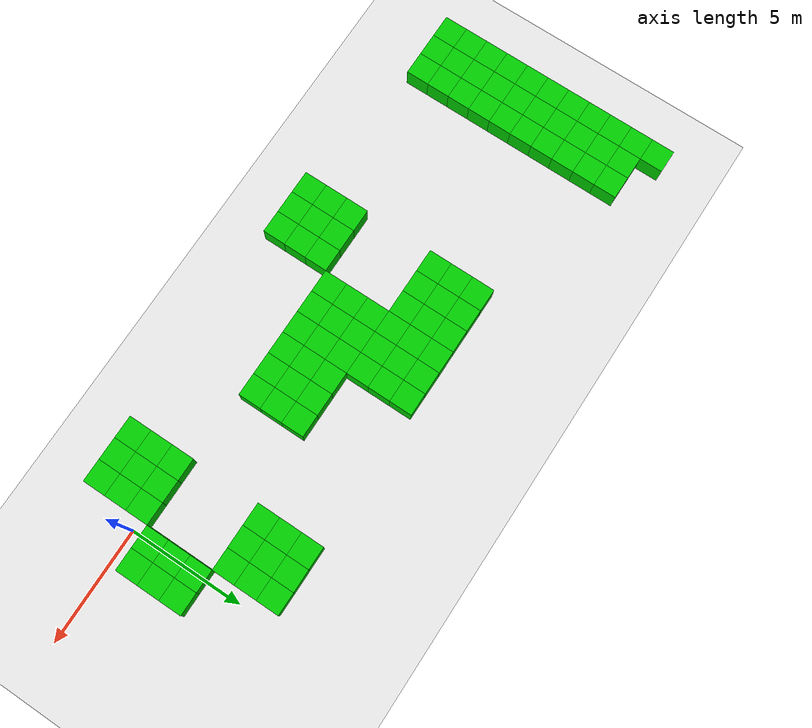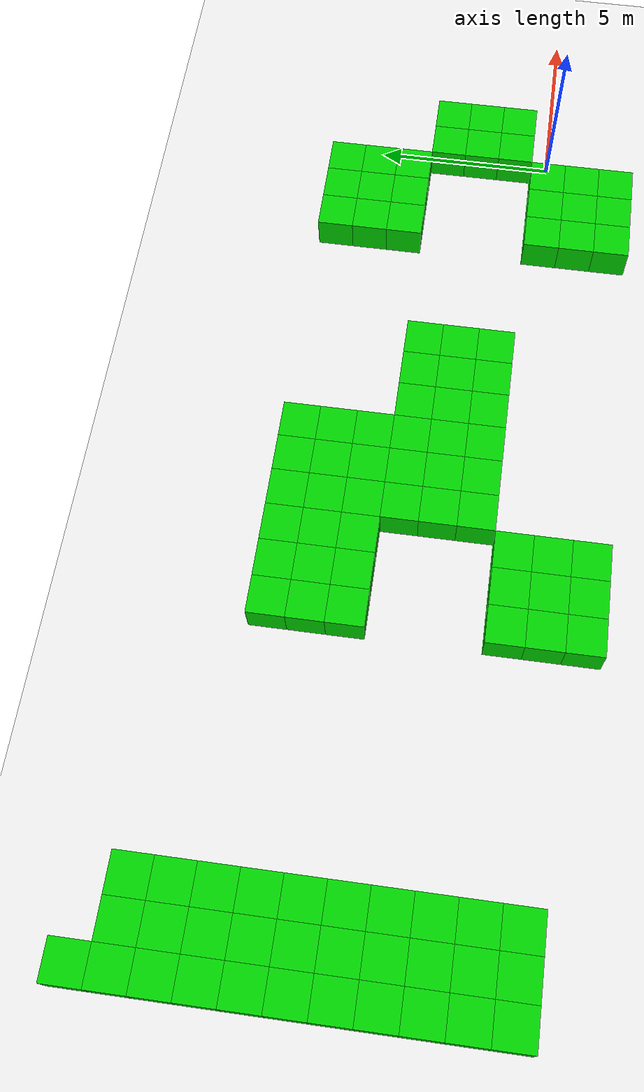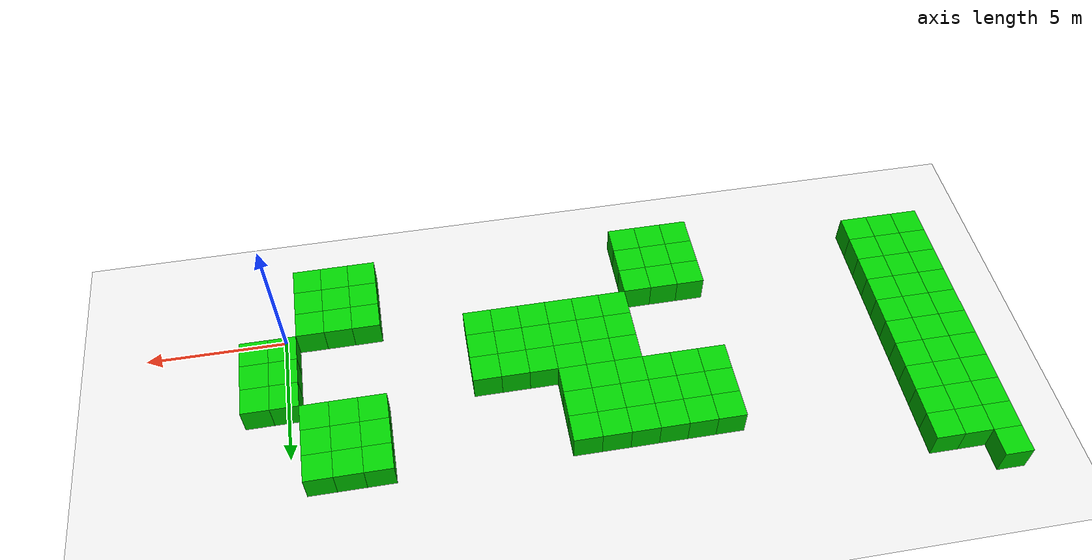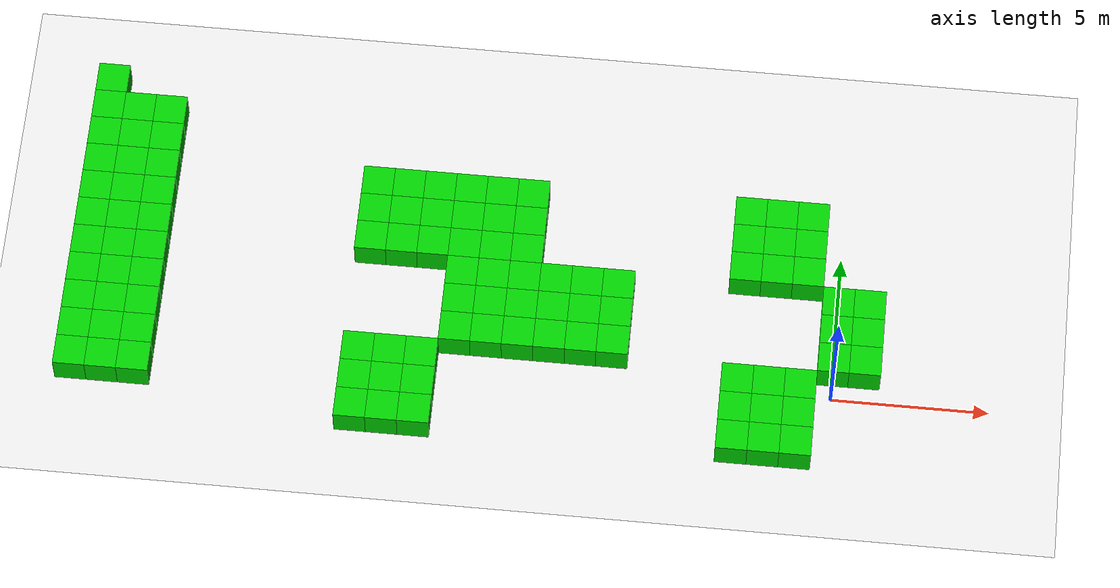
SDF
<sdf version="1.6">
 <world name="generated_maze">
  <model name="ground_plane">
   <static>true</static>
   <link name="link">
    <collision name="collision">
     <geometry><plane><normal>0 0 1</normal><size>100 100</size></plane></geometry>
    </collision>
    <visual name="visual">
     <geometry><plane><normal>0 0 1</normal><size>100 100</size></plane></geometry>
     <material>
      <ambient>0.9 0.9 0.9 1</ambient>
      <diffuse>0.9 0.9 0.9 1</diffuse>
      <specular>0.3 0.3 0.3 1</specular>
     </material>
    </visual>
   </link>
  </model>
  <model name="wall_15_0">
   <static>true</static>
   <pose>-24 9 0.5 0 0 0</pose>
   <link name="link">
    <collision name="collision"><geometry><box><size>1 1 1</size></box></geometry></collision>
    <visual name="visual">
     <geometry><box><size>1 1 1</size></box></geometry>
     <material>
      <ambient>0.0 0.8 0.0 1</ambient>
      <diffuse>0.0 0.8 0.0 1</diffuse>
      <specular>0.1 0.1 0.1 1</specular>
     </material>
    </visual>
   </link>
  </model>
  <model name="wall_16_0">
   <static>true</static>
   <pose>-24 8 0.5 0 0 0</pose>
   <link name="link">
    <collision name="collision"><geometry><box><size>1 1 1</size></box></geometry></collision>
    <visual name="visual">
     <geometry><box><size>1 1 1</size></box></geometry>
     <material>
      <ambient>0.0 0.8 0.0 1</ambient>
      <diffuse>0.0 0.8 0.0 1</diffuse>
      <specular>0.1 0.1 0.1 1</specular>
     </material>
    </visual>
   </link>
  </model>
  <model name="wall_16_1">
   <static>true</static>
   <pose>-23 8 0.5 0 0 0</pose>
   <link name="link">
    <collision name="collision"><geometry><box><size>1 1 1</size></box></geometry></collision>
    <visual name="visual">
     <geometry><box><size>1 1 1</size></box></geometry>
     <material>
      <ambient>0.0 0.8 0.0 1</ambient>
      <diffuse>0.0 0.8 0.0 1</diffuse>
      <specular>0.1 0.1 0.1 1</specular>
     </material>
    </visual>
   </link>
  </model>
  <model name="wall_16_2">
   <static>true</static>
   <pose>-22 8 0.5 0 0 0</pose>
   <link name="link">
    <collision name="collision"><geometry><box><size>1 1 1</size></box></geometry></collision>
    <visual name="visual">
     <geometry><box><size>1 1 1</size></box></geometry>
     <material>
      <ambient>0.0 0.8 0.0 1</ambient>
      <diffuse>0.0 0.8 0.0 1</diffuse>
      <specular>0.1 0.1 0.1 1</specular>
     </material>
    </visual>
   </link>
  </model>
  <model name="wall_17_0">
   <static>true</static>
   <pose>-24 7 0.5 0 0 0</pose>
   <link name="link">
    <collision name="collision"><geometry><box><size>1 1 1</size></box></geometry></collision>
    <visual name="visual">
     <geometry><box><size>1 1 1</size></box></geometry>
     <material>
      <ambient>0.0 0.8 0.0 1</ambient>
      <diffuse>0.0 0.8 0.0 1</diffuse>
      <specular>0.1 0.1 0.1 1</specular>
     </material>
    </visual>
   </link>
  </model>
  <model name="wall_17_1">
   <static>true</static>
   <pose>-23 7 0.5 0 0 0</pose>
   <link name="link">
    <collision name="collision"><geometry><box><size>1 1 1</size></box></geometry></collision>
    <visual name="visual">
     <geometry><box><size>1 1 1</size></box></geometry>
     <material>
      <ambient>0.0 0.8 0.0 1</ambient>
      <diffuse>0.0 0.8 0.0 1</diffuse>
      <specular>0.1 0.1 0.1 1</specular>
     </material>
    </visual>
   </link>
  </model>
  <model name="wall_17_2">
   <static>true</static>
   <pose>-22 7 0.5 0 0 0</pose>
   <link name="link">
    <collision name="collision"><geometry><box><size>1 1 1</size></box></geometry></collision>
    <visual name="visual">
     <geometry><box><size>1 1 1</size></box></geometry>
     <material>
      <ambient>0.0 0.8 0.0 1</ambient>
      <diffuse>0.0 0.8 0.0 1</diffuse>
      <specular>0.1 0.1 0.1 1</specular>
     </material>
    </visual>
   </link>
  </model>
  <model name="wall_18_0">
   <static>true</static>
   <pose>-24 6 0.5 0 0 0</pose>
   <link name="link">
    <collision name="collision"><geometry><box><size>1 1 1</size></box></geometry></collision>
    <visual name="visual">
     <geometry><box><size>1 1 1</size></box></geometry>
     <material>
      <ambient>0.0 0.8 0.0 1</ambient>
      <diffuse>0.0 0.8 0.0 1</diffuse>
      <specular>0.1 0.1 0.1 1</specular>
     </material>
    </visual>
   </link>
  </model>
  <model name="wall_18_1">
   <static>true</static>
   <pose>-23 6 0.5 0 0 0</pose>
   <link name="link">
    <collision name="collision"><geometry><box><size>1 1 1</size></box></geometry></collision>
    <visual name="visual">
     <geometry><box><size>1 1 1</size></box></geometry>
     <material>
      <ambient>0.0 0.8 0.0 1</ambient>
      <diffuse>0.0 0.8 0.0 1</diffuse>
      <specular>0.1 0.1 0.1 1</specular>
     </material>
    </visual>
   </link>
  </model>
  <model name="wall_18_2">
   <static>true</static>
   <pose>-22 6 0.5 0 0 0</pose>
   <link name="link">
    <collision name="collision"><geometry><box><size>1 1 1</size></box></geometry></collision>
    <visual name="visual">
     <geometry><box><size>1 1 1</size></box></geometry>
     <material>
      <ambient>0.0 0.8 0.0 1</ambient>
      <diffuse>0.0 0.8 0.0 1</diffuse>
      <specular>0.1 0.1 0.1 1</specular>
     </material>
    </visual>
   </link>
  </model>
  <model name="wall_18_9">
   <static>true</static>
   <pose>-15 6 0.5 0 0 0</pose>
   <link name="link">
    <collision name="collision"><geometry><box><size>1 1 1</size></box></geometry></collision>
    <visual name="visual">
     <geometry><box><size>1 1 1</size></box></geometry>
     <material>
      <ambient>0.0 0.8 0.0 1</ambient>
      <diffuse>0.0 0.8 0.0 1</diffuse>
      <specular>0.1 0.1 0.1 1</specular>
     </material>
    </visual>
   </link>
  </model>
  <model name="wall_18_10">
   <static>true</static>
   <pose>-14 6 0.5 0 0 0</pose>
   <link name="link">
    <collision name="collision"><geometry><box><size>1 1 1</size></box></geometry></collision>
    <visual name="visual">
     <geometry><box><size>1 1 1</size></box></geometry>
     <material>
      <ambient>0.0 0.8 0.0 1</ambient>
      <diffuse>0.0 0.8 0.0 1</diffuse>
      <specular>0.1 0.1 0.1 1</specular>
     </material>
    </visual>
   </link>
  </model>
  <model name="wall_18_11">
   <static>true</static>
   <pose>-13 6 0.5 0 0 0</pose>
   <link name="link">
    <collision name="collision"><geometry><box><size>1 1 1</size></box></geometry></collision>
    <visual name="visual">
     <geometry><box><size>1 1 1</size></box></geometry>
     <material>
      <ambient>0.0 0.8 0.0 1</ambient>
      <diffuse>0.0 0.8 0.0 1</diffuse>
      <specular>0.1 0.1 0.1 1</specular>
     </material>
    </visual>
   </link>
  </model>
  <model name="wall_18_12">
   <static>true</static>
   <pose>-12 6 0.5 0 0 0</pose>
   <link name="link">
    <collision name="collision"><geometry><box><size>1 1 1</size></box></geometry></collision>
    <visual name="visual">
     <geometry><box><size>1 1 1</size></box></geometry>
     <material>
      <ambient>0.0 0.8 0.0 1</ambient>
      <diffuse>0.0 0.8 0.0 1</diffuse>
      <specular>0.1 0.1 0.1 1</specular>
     </material>
    </visual>
   </link>
  </model>
  <model name="wall_18_13">
   <static>true</static>
   <pose>-11 6 0.5 0 0 0</pose>
   <link name="link">
    <collision name="collision"><geometry><box><size>1 1 1</size></box></geometry></collision>
    <visual name="visual">
     <geometry><box><size>1 1 1</size></box></geometry>
     <material>
      <ambient>0.0 0.8 0.0 1</ambient>
      <diffuse>0.0 0.8 0.0 1</diffuse>
      <specular>0.1 0.1 0.1 1</specular>
     </material>
    </visual>
   </link>
  </model>
  <model name="wall_18_14">
   <static>true</static>
   <pose>-10 6 0.5 0 0 0</pose>
   <link name="link">
    <collision name="collision"><geometry><box><size>1 1 1</size></box></geometry></collision>
    <visual name="visual">
     <geometry><box><size>1 1 1</size></box></geometry>
     <material>
      <ambient>0.0 0.8 0.0 1</ambient>
      <diffuse>0.0 0.8 0.0 1</diffuse>
      <specular>0.1 0.1 0.1 1</specular>
     </material>
    </visual>
   </link>
  </model>
  <model name="wall_18_21">
   <static>true</static>
   <pose>-3 6 0.5 0 0 0</pose>
   <link name="link">
    <collision name="collision"><geometry><box><size>1 1 1</size></box></geometry></collision>
    <visual name="visual">
     <geometry><box><size>1 1 1</size></box></geometry>
     <material>
      <ambient>0.0 0.8 0.0 1</ambient>
      <diffuse>0.0 0.8 0.0 1</diffuse>
      <specular>0.1 0.1 0.1 1</specular>
     </material>
    </visual>
   </link>
  </model>
  <model name="wall_18_22">
   <static>true</static>
   <pose>-2 6 0.5 0 0 0</pose>
   <link name="link">
    <collision name="collision"><geometry><box><size>1 1 1</size></box></geometry></collision>
    <visual name="visual">
     <geometry><box><size>1 1 1</size></box></geometry>
     <material>
      <ambient>0.0 0.8 0.0 1</ambient>
      <diffuse>0.0 0.8 0.0 1</diffuse>
      <specular>0.1 0.1 0.1 1</specular>
     </material>
    </visual>
   </link>
  </model>
  <model name="wall_18_23">
   <static>true</static>
   <pose>-1 6 0.5 0 0 0</pose>
   <link name="link">
    <collision name="collision"><geometry><box><size>1 1 1</size></box></geometry></collision>
    <visual name="visual">
     <geometry><box><size>1 1 1</size></box></geometry>
     <material>
      <ambient>0.0 0.8 0.0 1</ambient>
      <diffuse>0.0 0.8 0.0 1</diffuse>
      <specular>0.1 0.1 0.1 1</specular>
     </material>
    </visual>
   </link>
  </model>
  <model name="wall_19_0">
   <static>true</static>
   <pose>-24 5 0.5 0 0 0</pose>
   <link name="link">
    <collision name="collision"><geometry><box><size>1 1 1</size></box></geometry></collision>
    <visual name="visual">
     <geometry><box><size>1 1 1</size></box></geometry>
     <material>
      <ambient>0.0 0.8 0.0 1</ambient>
      <diffuse>0.0 0.8 0.0 1</diffuse>
      <specular>0.1 0.1 0.1 1</specular>
     </material>
    </visual>
   </link>
  </model>
  <model name="wall_19_1">
   <static>true</static>
   <pose>-23 5 0.5 0 0 0</pose>
   <link name="link">
    <collision name="collision"><geometry><box><size>1 1 1</size></box></geometry></collision>
    <visual name="visual">
     <geometry><box><size>1 1 1</size></box></geometry>
     <material>
      <ambient>0.0 0.8 0.0 1</ambient>
      <diffuse>0.0 0.8 0.0 1</diffuse>
      <specular>0.1 0.1 0.1 1</specular>
     </material>
    </visual>
   </link>
  </model>
  <model name="wall_19_2">
   <static>true</static>
   <pose>-22 5 0.5 0 0 0</pose>
   <link name="link">
    <collision name="collision"><geometry><box><size>1 1 1</size></box></geometry></collision>
    <visual name="visual">
     <geometry><box><size>1 1 1</size></box></geometry>
     <material>
      <ambient>0.0 0.8 0.0 1</ambient>
      <diffuse>0.0 0.8 0.0 1</diffuse>
      <specular>0.1 0.1 0.1 1</specular>
     </material>
    </visual>
   </link>
  </model>
  <model name="wall_19_9">
   <static>true</static>
   <pose>-15 5 0.5 0 0 0</pose>
   <link name="link">
    <collision name="collision"><geometry><box><size>1 1 1</size></box></geometry></collision>
    <visual name="visual">
     <geometry><box><size>1 1 1</size></box></geometry>
     <material>
      <ambient>0.0 0.8 0.0 1</ambient>
      <diffuse>0.0 0.8 0.0 1</diffuse>
      <specular>0.1 0.1 0.1 1</specular>
     </material>
    </visual>
   </link>
  </model>
  <model name="wall_19_10">
   <static>true</static>
   <pose>-14 5 0.5 0 0 0</pose>
   <link name="link">
    <collision name="collision"><geometry><box><size>1 1 1</size></box></geometry></collision>
    <visual name="visual">
     <geometry><box><size>1 1 1</size></box></geometry>
     <material>
      <ambient>0.0 0.8 0.0 1</ambient>
      <diffuse>0.0 0.8 0.0 1</diffuse>
      <specular>0.1 0.1 0.1 1</specular>
     </material>
    </visual>
   </link>
  </model>
  <model name="wall_19_11">
   <static>true</static>
   <pose>-13 5 0.5 0 0 0</pose>
   <link name="link">
    <collision name="collision"><geometry><box><size>1 1 1</size></box></geometry></collision>
    <visual name="visual">
     <geometry><box><size>1 1 1</size></box></geometry>
     <material>
      <ambient>0.0 0.8 0.0 1</ambient>
      <diffuse>0.0 0.8 0.0 1</diffuse>
      <specular>0.1 0.1 0.1 1</specular>
     </material>
    </visual>
   </link>
  </model>
  <model name="wall_19_12">
   <static>true</static>
   <pose>-12 5 0.5 0 0 0</pose>
   <link name="link">
    <collision name="collision"><geometry><box><size>1 1 1</size></box></geometry></collision>
    <visual name="visual">
     <geometry><box><size>1 1 1</size></box></geometry>
     <material>
      <ambient>0.0 0.8 0.0 1</ambient>
      <diffuse>0.0 0.8 0.0 1</diffuse>
      <specular>0.1 0.1 0.1 1</specular>
     </material>
    </visual>
   </link>
  </model>
  <model name="wall_19_13">
   <static>true</static>
   <pose>-11 5 0.5 0 0 0</pose>
   <link name="link">
    <collision name="collision"><geometry><box><size>1 1 1</size></box></geometry></collision>
    <visual name="visual">
     <geometry><box><size>1 1 1</size></box></geometry>
     <material>
      <ambient>0.0 0.8 0.0 1</ambient>
      <diffuse>0.0 0.8 0.0 1</diffuse>
      <specular>0.1 0.1 0.1 1</specular>
     </material>
    </visual>
   </link>
  </model>
  <model name="wall_19_14">
   <static>true</static>
   <pose>-10 5 0.5 0 0 0</pose>
   <link name="link">
    <collision name="collision"><geometry><box><size>1 1 1</size></box></geometry></collision>
    <visual name="visual">
     <geometry><box><size>1 1 1</size></box></geometry>
     <material>
      <ambient>0.0 0.8 0.0 1</ambient>
      <diffuse>0.0 0.8 0.0 1</diffuse>
      <specular>0.1 0.1 0.1 1</specular>
     </material>
    </visual>
   </link>
  </model>
  <model name="wall_19_21">
   <static>true</static>
   <pose>-3 5 0.5 0 0 0</pose>
   <link name="link">
    <collision name="collision"><geometry><box><size>1 1 1</size></box></geometry></collision>
    <visual name="visual">
     <geometry><box><size>1 1 1</size></box></geometry>
     <material>
      <ambient>0.0 0.8 0.0 1</ambient>
      <diffuse>0.0 0.8 0.0 1</diffuse>
      <specular>0.1 0.1 0.1 1</specular>
     </material>
    </visual>
   </link>
  </model>
  <model name="wall_19_22">
   <static>true</static>
   <pose>-2 5 0.5 0 0 0</pose>
   <link name="link">
    <collision name="collision"><geometry><box><size>1 1 1</size></box></geometry></collision>
    <visual name="visual">
     <geometry><box><size>1 1 1</size></box></geometry>
     <material>
      <ambient>0.0 0.8 0.0 1</ambient>
      <diffuse>0.0 0.8 0.0 1</diffuse>
      <specular>0.1 0.1 0.1 1</specular>
     </material>
    </visual>
   </link>
  </model>
  <model name="wall_19_23">
   <static>true</static>
   <pose>-1 5 0.5 0 0 0</pose>
   <link name="link">
    <collision name="collision"><geometry><box><size>1 1 1</size></box></geometry></collision>
    <visual name="visual">
     <geometry><box><size>1 1 1</size></box></geometry>
     <material>
      <ambient>0.0 0.8 0.0 1</ambient>
      <diffuse>0.0 0.8 0.0 1</diffuse>
      <specular>0.1 0.1 0.1 1</specular>
     </material>
    </visual>
   </link>
  </model>
  <model name="wall_20_0">
   <static>true</static>
   <pose>-24 4 0.5 0 0 0</pose>
   <link name="link">
    <collision name="collision"><geometry><box><size>1 1 1</size></box></geometry></collision>
    <visual name="visual">
     <geometry><box><size>1 1 1</size></box></geometry>
     <material>
      <ambient>0.0 0.8 0.0 1</ambient>
      <diffuse>0.0 0.8 0.0 1</diffuse>
      <specular>0.1 0.1 0.1 1</specular>
     </material>
    </visual>
   </link>
  </model>
  <model name="wall_20_1">
   <static>true</static>
   <pose>-23 4 0.5 0 0 0</pose>
   <link name="link">
    <collision name="collision"><geometry><box><size>1 1 1</size></box></geometry></collision>
    <visual name="visual">
     <geometry><box><size>1 1 1</size></box></geometry>
     <material>
      <ambient>0.0 0.8 0.0 1</ambient>
      <diffuse>0.0 0.8 0.0 1</diffuse>
      <specular>0.1 0.1 0.1 1</specular>
     </material>
    </visual>
   </link>
  </model>
  <model name="wall_20_2">
   <static>true</static>
   <pose>-22 4 0.5 0 0 0</pose>
   <link name="link">
    <collision name="collision"><geometry><box><size>1 1 1</size></box></geometry></collision>
    <visual name="visual">
     <geometry><box><size>1 1 1</size></box></geometry>
     <material>
      <ambient>0.0 0.8 0.0 1</ambient>
      <diffuse>0.0 0.8 0.0 1</diffuse>
      <specular>0.1 0.1 0.1 1</specular>
     </material>
    </visual>
   </link>
  </model>
  <model name="wall_20_9">
   <static>true</static>
   <pose>-15 4 0.5 0 0 0</pose>
   <link name="link">
    <collision name="collision"><geometry><box><size>1 1 1</size></box></geometry></collision>
    <visual name="visual">
     <geometry><box><size>1 1 1</size></box></geometry>
     <material>
      <ambient>0.0 0.8 0.0 1</ambient>
      <diffuse>0.0 0.8 0.0 1</diffuse>
      <specular>0.1 0.1 0.1 1</specular>
     </material>
    </visual>
   </link>
  </model>
  <model name="wall_20_10">
   <static>true</static>
   <pose>-14 4 0.5 0 0 0</pose>
   <link name="link">
    <collision name="collision"><geometry><box><size>1 1 1</size></box></geometry></collision>
    <visual name="visual">
     <geometry><box><size>1 1 1</size></box></geometry>
     <material>
      <ambient>0.0 0.8 0.0 1</ambient>
      <diffuse>0.0 0.8 0.0 1</diffuse>
      <specular>0.1 0.1 0.1 1</specular>
     </material>
    </visual>
   </link>
  </model>
  <model name="wall_20_11">
   <static>true</static>
   <pose>-13 4 0.5 0 0 0</pose>
   <link name="link">
    <collision name="collision"><geometry><box><size>1 1 1</size></box></geometry></collision>
    <visual name="visual">
     <geometry><box><size>1 1 1</size></box></geometry>
     <material>
      <ambient>0.0 0.8 0.0 1</ambient>
      <diffuse>0.0 0.8 0.0 1</diffuse>
      <specular>0.1 0.1 0.1 1</specular>
     </material>
    </visual>
   </link>
  </model>
  <model name="wall_20_12">
   <static>true</static>
   <pose>-12 4 0.5 0 0 0</pose>
   <link name="link">
    <collision name="collision"><geometry><box><size>1 1 1</size></box></geometry></collision>
    <visual name="visual">
     <geometry><box><size>1 1 1</size></box></geometry>
     <material>
      <ambient>0.0 0.8 0.0 1</ambient>
      <diffuse>0.0 0.8 0.0 1</diffuse>
      <specular>0.1 0.1 0.1 1</specular>
     </material>
    </visual>
   </link>
  </model>
  <model name="wall_20_13">
   <static>true</static>
   <pose>-11 4 0.5 0 0 0</pose>
   <link name="link">
    <collision name="collision"><geometry><box><size>1 1 1</size></box></geometry></collision>
    <visual name="visual">
     <geometry><box><size>1 1 1</size></box></geometry>
     <material>
      <ambient>0.0 0.8 0.0 1</ambient>
      <diffuse>0.0 0.8 0.0 1</diffuse>
      <specular>0.1 0.1 0.1 1</specular>
     </material>
    </visual>
   </link>
  </model>
  <model name="wall_20_14">
   <static>true</static>
   <pose>-10 4 0.5 0 0 0</pose>
   <link name="link">
    <collision name="collision"><geometry><box><size>1 1 1</size></box></geometry></collision>
    <visual name="visual">
     <geometry><box><size>1 1 1</size></box></geometry>
     <material>
      <ambient>0.0 0.8 0.0 1</ambient>
      <diffuse>0.0 0.8 0.0 1</diffuse>
      <specular>0.1 0.1 0.1 1</specular>
     </material>
    </visual>
   </link>
  </model>
  <model name="wall_20_21">
   <static>true</static>
   <pose>-3 4 0.5 0 0 0</pose>
   <link name="link">
    <collision name="collision"><geometry><box><size>1 1 1</size></box></geometry></collision>
    <visual name="visual">
     <geometry><box><size>1 1 1</size></box></geometry>
     <material>
      <ambient>0.0 0.8 0.0 1</ambient>
      <diffuse>0.0 0.8 0.0 1</diffuse>
      <specular>0.1 0.1 0.1 1</specular>
     </material>
    </visual>
   </link>
  </model>
  <model name="wall_20_22">
   <static>true</static>
   <pose>-2 4 0.5 0 0 0</pose>
   <link name="link">
    <collision name="collision"><geometry><box><size>1 1 1</size></box></geometry></collision>
    <visual name="visual">
     <geometry><box><size>1 1 1</size></box></geometry>
     <material>
      <ambient>0.0 0.8 0.0 1</ambient>
      <diffuse>0.0 0.8 0.0 1</diffuse>
      <specular>0.1 0.1 0.1 1</specular>
     </material>
    </visual>
   </link>
  </model>
  <model name="wall_20_23">
   <static>true</static>
   <pose>-1 4 0.5 0 0 0</pose>
   <link name="link">
    <collision name="collision"><geometry><box><size>1 1 1</size></box></geometry></collision>
    <visual name="visual">
     <geometry><box><size>1 1 1</size></box></geometry>
     <material>
      <ambient>0.0 0.8 0.0 1</ambient>
      <diffuse>0.0 0.8 0.0 1</diffuse>
      <specular>0.1 0.1 0.1 1</specular>
     </material>
    </visual>
   </link>
  </model>
  <model name="wall_21_0">
   <static>true</static>
   <pose>-24 3 0.5 0 0 0</pose>
   <link name="link">
    <collision name="collision"><geometry><box><size>1 1 1</size></box></geometry></collision>
    <visual name="visual">
     <geometry><box><size>1 1 1</size></box></geometry>
     <material>
      <ambient>0.0 0.8 0.0 1</ambient>
      <diffuse>0.0 0.8 0.0 1</diffuse>
      <specular>0.1 0.1 0.1 1</specular>
     </material>
    </visual>
   </link>
  </model>
  <model name="wall_21_1">
   <static>true</static>
   <pose>-23 3 0.5 0 0 0</pose>
   <link name="link">
    <collision name="collision"><geometry><box><size>1 1 1</size></box></geometry></collision>
    <visual name="visual">
     <geometry><box><size>1 1 1</size></box></geometry>
     <material>
      <ambient>0.0 0.8 0.0 1</ambient>
      <diffuse>0.0 0.8 0.0 1</diffuse>
      <specular>0.1 0.1 0.1 1</specular>
     </material>
    </visual>
   </link>
  </model>
  <model name="wall_21_2">
   <static>true</static>
   <pose>-22 3 0.5 0 0 0</pose>
   <link name="link">
    <collision name="collision"><geometry><box><size>1 1 1</size></box></geometry></collision>
    <visual name="visual">
     <geometry><box><size>1 1 1</size></box></geometry>
     <material>
      <ambient>0.0 0.8 0.0 1</ambient>
      <diffuse>0.0 0.8 0.0 1</diffuse>
      <specular>0.1 0.1 0.1 1</specular>
     </material>
    </visual>
   </link>
  </model>
  <model name="wall_21_12">
   <static>true</static>
   <pose>-12 3 0.5 0 0 0</pose>
   <link name="link">
    <collision name="collision"><geometry><box><size>1 1 1</size></box></geometry></collision>
    <visual name="visual">
     <geometry><box><size>1 1 1</size></box></geometry>
     <material>
      <ambient>0.0 0.8 0.0 1</ambient>
      <diffuse>0.0 0.8 0.0 1</diffuse>
      <specular>0.1 0.1 0.1 1</specular>
     </material>
    </visual>
   </link>
  </model>
  <model name="wall_21_13">
   <static>true</static>
   <pose>-11 3 0.5 0 0 0</pose>
   <link name="link">
    <collision name="collision"><geometry><box><size>1 1 1</size></box></geometry></collision>
    <visual name="visual">
     <geometry><box><size>1 1 1</size></box></geometry>
     <material>
      <ambient>0.0 0.8 0.0 1</ambient>
      <diffuse>0.0 0.8 0.0 1</diffuse>
      <specular>0.1 0.1 0.1 1</specular>
     </material>
    </visual>
   </link>
  </model>
  <model name="wall_21_14">
   <static>true</static>
   <pose>-10 3 0.5 0 0 0</pose>
   <link name="link">
    <collision name="collision"><geometry><box><size>1 1 1</size></box></geometry></collision>
    <visual name="visual">
     <geometry><box><size>1 1 1</size></box></geometry>
     <material>
      <ambient>0.0 0.8 0.0 1</ambient>
      <diffuse>0.0 0.8 0.0 1</diffuse>
      <specular>0.1 0.1 0.1 1</specular>
     </material>
    </visual>
   </link>
  </model>
  <model name="wall_21_15">
   <static>true</static>
   <pose>-9 3 0.5 0 0 0</pose>
   <link name="link">
    <collision name="collision"><geometry><box><size>1 1 1</size></box></geometry></collision>
    <visual name="visual">
     <geometry><box><size>1 1 1</size></box></geometry>
     <material>
      <ambient>0.0 0.8 0.0 1</ambient>
      <diffuse>0.0 0.8 0.0 1</diffuse>
      <specular>0.1 0.1 0.1 1</specular>
     </material>
    </visual>
   </link>
  </model>
  <model name="wall_21_16">
   <static>true</static>
   <pose>-8 3 0.5 0 0 0</pose>
   <link name="link">
    <collision name="collision"><geometry><box><size>1 1 1</size></box></geometry></collision>
    <visual name="visual">
     <geometry><box><size>1 1 1</size></box></geometry>
     <material>
      <ambient>0.0 0.8 0.0 1</ambient>
      <diffuse>0.0 0.8 0.0 1</diffuse>
      <specular>0.1 0.1 0.1 1</specular>
     </material>
    </visual>
   </link>
  </model>
  <model name="wall_21_17">
   <static>true</static>
   <pose>-7 3 0.5 0 0 0</pose>
   <link name="link">
    <collision name="collision"><geometry><box><size>1 1 1</size></box></geometry></collision>
    <visual name="visual">
     <geometry><box><size>1 1 1</size></box></geometry>
     <material>
      <ambient>0.0 0.8 0.0 1</ambient>
      <diffuse>0.0 0.8 0.0 1</diffuse>
      <specular>0.1 0.1 0.1 1</specular>
     </material>
    </visual>
   </link>
  </model>
  <model name="wall_21_24">
   <static>true</static>
   <pose>0 3 0.5 0 0 0</pose>
   <link name="link">
    <collision name="collision"><geometry><box><size>1 1 1</size></box></geometry></collision>
    <visual name="visual">
     <geometry><box><size>1 1 1</size></box></geometry>
     <material>
      <ambient>0.0 0.8 0.0 1</ambient>
      <diffuse>0.0 0.8 0.0 1</diffuse>
      <specular>0.1 0.1 0.1 1</specular>
     </material>
    </visual>
   </link>
  </model>
  <model name="wall_21_25">
   <static>true</static>
   <pose>1 3 0.5 0 0 0</pose>
   <link name="link">
    <collision name="collision"><geometry><box><size>1 1 1</size></box></geometry></collision>
    <visual name="visual">
     <geometry><box><size>1 1 1</size></box></geometry>
     <material>
      <ambient>0.0 0.8 0.0 1</ambient>
      <diffuse>0.0 0.8 0.0 1</diffuse>
      <specular>0.1 0.1 0.1 1</specular>
     </material>
    </visual>
   </link>
  </model>
  <model name="wall_22_0">
   <static>true</static>
   <pose>-24 2 0.5 0 0 0</pose>
   <link name="link">
    <collision name="collision"><geometry><box><size>1 1 1</size></box></geometry></collision>
    <visual name="visual">
     <geometry><box><size>1 1 1</size></box></geometry>
     <material>
      <ambient>0.0 0.8 0.0 1</ambient>
      <diffuse>0.0 0.8 0.0 1</diffuse>
      <specular>0.1 0.1 0.1 1</specular>
     </material>
    </visual>
   </link>
  </model>
  <model name="wall_22_1">
   <static>true</static>
   <pose>-23 2 0.5 0 0 0</pose>
   <link name="link">
    <collision name="collision"><geometry><box><size>1 1 1</size></box></geometry></collision>
    <visual name="visual">
     <geometry><box><size>1 1 1</size></box></geometry>
     <material>
      <ambient>0.0 0.8 0.0 1</ambient>
      <diffuse>0.0 0.8 0.0 1</diffuse>
      <specular>0.1 0.1 0.1 1</specular>
     </material>
    </visual>
   </link>
  </model>
  <model name="wall_22_2">
   <static>true</static>
   <pose>-22 2 0.5 0 0 0</pose>
   <link name="link">
    <collision name="collision"><geometry><box><size>1 1 1</size></box></geometry></collision>
    <visual name="visual">
     <geometry><box><size>1 1 1</size></box></geometry>
     <material>
      <ambient>0.0 0.8 0.0 1</ambient>
      <diffuse>0.0 0.8 0.0 1</diffuse>
      <specular>0.1 0.1 0.1 1</specular>
     </material>
    </visual>
   </link>
  </model>
  <model name="wall_22_12">
   <static>true</static>
   <pose>-12 2 0.5 0 0 0</pose>
   <link name="link">
    <collision name="collision"><geometry><box><size>1 1 1</size></box></geometry></collision>
    <visual name="visual">
     <geometry><box><size>1 1 1</size></box></geometry>
     <material>
      <ambient>0.0 0.8 0.0 1</ambient>
      <diffuse>0.0 0.8 0.0 1</diffuse>
      <specular>0.1 0.1 0.1 1</specular>
     </material>
    </visual>
   </link>
  </model>
  <model name="wall_22_13">
   <static>true</static>
   <pose>-11 2 0.5 0 0 0</pose>
   <link name="link">
    <collision name="collision"><geometry><box><size>1 1 1</size></box></geometry></collision>
    <visual name="visual">
     <geometry><box><size>1 1 1</size></box></geometry>
     <material>
      <ambient>0.0 0.8 0.0 1</ambient>
      <diffuse>0.0 0.8 0.0 1</diffuse>
      <specular>0.1 0.1 0.1 1</specular>
     </material>
    </visual>
   </link>
  </model>
  <model name="wall_22_14">
   <static>true</static>
   <pose>-10 2 0.5 0 0 0</pose>
   <link name="link">
    <collision name="collision"><geometry><box><size>1 1 1</size></box></geometry></collision>
    <visual name="visual">
     <geometry><box><size>1 1 1</size></box></geometry>
     <material>
      <ambient>0.0 0.8 0.0 1</ambient>
      <diffuse>0.0 0.8 0.0 1</diffuse>
      <specular>0.1 0.1 0.1 1</specular>
     </material>
    </visual>
   </link>
  </model>
  <model name="wall_22_15">
   <static>true</static>
   <pose>-9 2 0.5 0 0 0</pose>
   <link name="link">
    <collision name="collision"><geometry><box><size>1 1 1</size></box></geometry></collision>
    <visual name="visual">
     <geometry><box><size>1 1 1</size></box></geometry>
     <material>
      <ambient>0.0 0.8 0.0 1</ambient>
      <diffuse>0.0 0.8 0.0 1</diffuse>
      <specular>0.1 0.1 0.1 1</specular>
     </material>
    </visual>
   </link>
  </model>
  <model name="wall_22_16">
   <static>true</static>
   <pose>-8 2 0.5 0 0 0</pose>
   <link name="link">
    <collision name="collision"><geometry><box><size>1 1 1</size></box></geometry></collision>
    <visual name="visual">
     <geometry><box><size>1 1 1</size></box></geometry>
     <material>
      <ambient>0.0 0.8 0.0 1</ambient>
      <diffuse>0.0 0.8 0.0 1</diffuse>
      <specular>0.1 0.1 0.1 1</specular>
     </material>
    </visual>
   </link>
  </model>
  <model name="wall_22_17">
   <static>true</static>
   <pose>-7 2 0.5 0 0 0</pose>
   <link name="link">
    <collision name="collision"><geometry><box><size>1 1 1</size></box></geometry></collision>
    <visual name="visual">
     <geometry><box><size>1 1 1</size></box></geometry>
     <material>
      <ambient>0.0 0.8 0.0 1</ambient>
      <diffuse>0.0 0.8 0.0 1</diffuse>
      <specular>0.1 0.1 0.1 1</specular>
     </material>
    </visual>
   </link>
  </model>
  <model name="wall_22_24">
   <static>true</static>
   <pose>0 2 0.5 0 0 0</pose>
   <link name="link">
    <collision name="collision"><geometry><box><size>1 1 1</size></box></geometry></collision>
    <visual name="visual">
     <geometry><box><size>1 1 1</size></box></geometry>
     <material>
      <ambient>0.0 0.8 0.0 1</ambient>
      <diffuse>0.0 0.8 0.0 1</diffuse>
      <specular>0.1 0.1 0.1 1</specular>
     </material>
    </visual>
   </link>
  </model>
  <model name="wall_22_25">
   <static>true</static>
   <pose>1 2 0.5 0 0 0</pose>
   <link name="link">
    <collision name="collision"><geometry><box><size>1 1 1</size></box></geometry></collision>
    <visual name="visual">
     <geometry><box><size>1 1 1</size></box></geometry>
     <material>
      <ambient>0.0 0.8 0.0 1</ambient>
      <diffuse>0.0 0.8 0.0 1</diffuse>
      <specular>0.1 0.1 0.1 1</specular>
     </material>
    </visual>
   </link>
  </model>
  <model name="wall_23_0">
   <static>true</static>
   <pose>-24 1 0.5 0 0 0</pose>
   <link name="link">
    <collision name="collision"><geometry><box><size>1 1 1</size></box></geometry></collision>
    <visual name="visual">
     <geometry><box><size>1 1 1</size></box></geometry>
     <material>
      <ambient>0.0 0.8 0.0 1</ambient>
      <diffuse>0.0 0.8 0.0 1</diffuse>
      <specular>0.1 0.1 0.1 1</specular>
     </material>
    </visual>
   </link>
  </model>
  <model name="wall_23_1">
   <static>true</static>
   <pose>-23 1 0.5 0 0 0</pose>
   <link name="link">
    <collision name="collision"><geometry><box><size>1 1 1</size></box></geometry></collision>
    <visual name="visual">
     <geometry><box><size>1 1 1</size></box></geometry>
     <material>
      <ambient>0.0 0.8 0.0 1</ambient>
      <diffuse>0.0 0.8 0.0 1</diffuse>
      <specular>0.1 0.1 0.1 1</specular>
     </material>
    </visual>
   </link>
  </model>
  <model name="wall_23_2">
   <static>true</static>
   <pose>-22 1 0.5 0 0 0</pose>
   <link name="link">
    <collision name="collision"><geometry><box><size>1 1 1</size></box></geometry></collision>
    <visual name="visual">
     <geometry><box><size>1 1 1</size></box></geometry>
     <material>
      <ambient>0.0 0.8 0.0 1</ambient>
      <diffuse>0.0 0.8 0.0 1</diffuse>
      <specular>0.1 0.1 0.1 1</specular>
     </material>
    </visual>
   </link>
  </model>
  <model name="wall_23_12">
   <static>true</static>
   <pose>-12 1 0.5 0 0 0</pose>
   <link name="link">
    <collision name="collision"><geometry><box><size>1 1 1</size></box></geometry></collision>
    <visual name="visual">
     <geometry><box><size>1 1 1</size></box></geometry>
     <material>
      <ambient>0.0 0.8 0.0 1</ambient>
      <diffuse>0.0 0.8 0.0 1</diffuse>
      <specular>0.1 0.1 0.1 1</specular>
     </material>
    </visual>
   </link>
  </model>
  <model name="wall_23_13">
   <static>true</static>
   <pose>-11 1 0.5 0 0 0</pose>
   <link name="link">
    <collision name="collision"><geometry><box><size>1 1 1</size></box></geometry></collision>
    <visual name="visual">
     <geometry><box><size>1 1 1</size></box></geometry>
     <material>
      <ambient>0.0 0.8 0.0 1</ambient>
      <diffuse>0.0 0.8 0.0 1</diffuse>
      <specular>0.1 0.1 0.1 1</specular>
     </material>
    </visual>
   </link>
  </model>
  <model name="wall_23_14">
   <static>true</static>
   <pose>-10 1 0.5 0 0 0</pose>
   <link name="link">
    <collision name="collision"><geometry><box><size>1 1 1</size></box></geometry></collision>
    <visual name="visual">
     <geometry><box><size>1 1 1</size></box></geometry>
     <material>
      <ambient>0.0 0.8 0.0 1</ambient>
      <diffuse>0.0 0.8 0.0 1</diffuse>
      <specular>0.1 0.1 0.1 1</specular>
     </material>
    </visual>
   </link>
  </model>
  <model name="wall_23_15">
   <static>true</static>
   <pose>-9 1 0.5 0 0 0</pose>
   <link name="link">
    <collision name="collision"><geometry><box><size>1 1 1</size></box></geometry></collision>
    <visual name="visual">
     <geometry><box><size>1 1 1</size></box></geometry>
     <material>
      <ambient>0.0 0.8 0.0 1</ambient>
      <diffuse>0.0 0.8 0.0 1</diffuse>
      <specular>0.1 0.1 0.1 1</specular>
     </material>
    </visual>
   </link>
  </model>
  <model name="wall_23_16">
   <static>true</static>
   <pose>-8 1 0.5 0 0 0</pose>
   <link name="link">
    <collision name="collision"><geometry><box><size>1 1 1</size></box></geometry></collision>
    <visual name="visual">
     <geometry><box><size>1 1 1</size></box></geometry>
     <material>
      <ambient>0.0 0.8 0.0 1</ambient>
      <diffuse>0.0 0.8 0.0 1</diffuse>
      <specular>0.1 0.1 0.1 1</specular>
     </material>
    </visual>
   </link>
  </model>
  <model name="wall_23_17">
   <static>true</static>
   <pose>-7 1 0.5 0 0 0</pose>
   <link name="link">
    <collision name="collision"><geometry><box><size>1 1 1</size></box></geometry></collision>
    <visual name="visual">
     <geometry><box><size>1 1 1</size></box></geometry>
     <material>
      <ambient>0.0 0.8 0.0 1</ambient>
      <diffuse>0.0 0.8 0.0 1</diffuse>
      <specular>0.1 0.1 0.1 1</specular>
     </material>
    </visual>
   </link>
  </model>
  <model name="wall_23_24">
   <static>true</static>
   <pose>0 1 0.5 0 0 0</pose>
   <link name="link">
    <collision name="collision"><geometry><box><size>1 1 1</size></box></geometry></collision>
    <visual name="visual">
     <geometry><box><size>1 1 1</size></box></geometry>
     <material>
      <ambient>0.0 0.8 0.0 1</ambient>
      <diffuse>0.0 0.8 0.0 1</diffuse>
      <specular>0.1 0.1 0.1 1</specular>
     </material>
    </visual>
   </link>
  </model>
  <model name="wall_23_25">
   <static>true</static>
   <pose>1 1 0.5 0 0 0</pose>
   <link name="link">
    <collision name="collision"><geometry><box><size>1 1 1</size></box></geometry></collision>
    <visual name="visual">
     <geometry><box><size>1 1 1</size></box></geometry>
     <material>
      <ambient>0.0 0.8 0.0 1</ambient>
      <diffuse>0.0 0.8 0.0 1</diffuse>
      <specular>0.1 0.1 0.1 1</specular>
     </material>
    </visual>
   </link>
  </model>
  <model name="wall_24_0">
   <static>true</static>
   <pose>-24 0 0.5 0 0 0</pose>
   <link name="link">
    <collision name="collision"><geometry><box><size>1 1 1</size></box></geometry></collision>
    <visual name="visual">
     <geometry><box><size>1 1 1</size></box></geometry>
     <material>
      <ambient>0.0 0.8 0.0 1</ambient>
      <diffuse>0.0 0.8 0.0 1</diffuse>
      <specular>0.1 0.1 0.1 1</specular>
     </material>
    </visual>
   </link>
  </model>
  <model name="wall_24_1">
   <static>true</static>
   <pose>-23 0 0.5 0 0 0</pose>
   <link name="link">
    <collision name="collision"><geometry><box><size>1 1 1</size></box></geometry></collision>
    <visual name="visual">
     <geometry><box><size>1 1 1</size></box></geometry>
     <material>
      <ambient>0.0 0.8 0.0 1</ambient>
      <diffuse>0.0 0.8 0.0 1</diffuse>
      <specular>0.1 0.1 0.1 1</specular>
     </material>
    </visual>
   </link>
  </model>
  <model name="wall_24_2">
   <static>true</static>
   <pose>-22 0 0.5 0 0 0</pose>
   <link name="link">
    <collision name="collision"><geometry><box><size>1 1 1</size></box></geometry></collision>
    <visual name="visual">
     <geometry><box><size>1 1 1</size></box></geometry>
     <material>
      <ambient>0.0 0.8 0.0 1</ambient>
      <diffuse>0.0 0.8 0.0 1</diffuse>
      <specular>0.1 0.1 0.1 1</specular>
     </material>
    </visual>
   </link>
  </model>
  <model name="wall_24_9">
   <static>true</static>
   <pose>-15 0 0.5 0 0 0</pose>
   <link name="link">
    <collision name="collision"><geometry><box><size>1 1 1</size></box></geometry></collision>
    <visual name="visual">
     <geometry><box><size>1 1 1</size></box></geometry>
     <material>
      <ambient>0.0 0.8 0.0 1</ambient>
      <diffuse>0.0 0.8 0.0 1</diffuse>
      <specular>0.1 0.1 0.1 1</specular>
     </material>
    </visual>
   </link>
  </model>
  <model name="wall_24_10">
   <static>true</static>
   <pose>-14 0 0.5 0 0 0</pose>
   <link name="link">
    <collision name="collision"><geometry><box><size>1 1 1</size></box></geometry></collision>
    <visual name="visual">
     <geometry><box><size>1 1 1</size></box></geometry>
     <material>
      <ambient>0.0 0.8 0.0 1</ambient>
      <diffuse>0.0 0.8 0.0 1</diffuse>
      <specular>0.1 0.1 0.1 1</specular>
     </material>
    </visual>
   </link>
  </model>
  <model name="wall_24_11">
   <static>true</static>
   <pose>-13 0 0.5 0 0 0</pose>
   <link name="link">
    <collision name="collision"><geometry><box><size>1 1 1</size></box></geometry></collision>
    <visual name="visual">
     <geometry><box><size>1 1 1</size></box></geometry>
     <material>
      <ambient>0.0 0.8 0.0 1</ambient>
      <diffuse>0.0 0.8 0.0 1</diffuse>
      <specular>0.1 0.1 0.1 1</specular>
     </material>
    </visual>
   </link>
  </model>
  <model name="wall_24_21">
   <static>true</static>
   <pose>-3 0 0.5 0 0 0</pose>
   <link name="link">
    <collision name="collision"><geometry><box><size>1 1 1</size></box></geometry></collision>
    <visual name="visual">
     <geometry><box><size>1 1 1</size></box></geometry>
     <material>
      <ambient>0.0 0.8 0.0 1</ambient>
      <diffuse>0.0 0.8 0.0 1</diffuse>
      <specular>0.1 0.1 0.1 1</specular>
     </material>
    </visual>
   </link>
  </model>
  <model name="wall_24_22">
   <static>true</static>
   <pose>-2 0 0.5 0 0 0</pose>
   <link name="link">
    <collision name="collision"><geometry><box><size>1 1 1</size></box></geometry></collision>
    <visual name="visual">
     <geometry><box><size>1 1 1</size></box></geometry>
     <material>
      <ambient>0.0 0.8 0.0 1</ambient>
      <diffuse>0.0 0.8 0.0 1</diffuse>
      <specular>0.1 0.1 0.1 1</specular>
     </material>
    </visual>
   </link>
  </model>
  <model name="wall_24_23">
   <static>true</static>
   <pose>-1 0 0.5 0 0 0</pose>
   <link name="link">
    <collision name="collision"><geometry><box><size>1 1 1</size></box></geometry></collision>
    <visual name="visual">
     <geometry><box><size>1 1 1</size></box></geometry>
     <material>
      <ambient>0.0 0.8 0.0 1</ambient>
      <diffuse>0.0 0.8 0.0 1</diffuse>
      <specular>0.1 0.1 0.1 1</specular>
     </material>
    </visual>
   </link>
  </model>
  <model name="wall_25_0">
   <static>true</static>
   <pose>-24 -1 0.5 0 0 0</pose>
   <link name="link">
    <collision name="collision"><geometry><box><size>1 1 1</size></box></geometry></collision>
    <visual name="visual">
     <geometry><box><size>1 1 1</size></box></geometry>
     <material>
      <ambient>0.0 0.8 0.0 1</ambient>
      <diffuse>0.0 0.8 0.0 1</diffuse>
      <specular>0.1 0.1 0.1 1</specular>
     </material>
    </visual>
   </link>
  </model>
  <model name="wall_25_1">
   <static>true</static>
   <pose>-23 -1 0.5 0 0 0</pose>
   <link name="link">
    <collision name="collision"><geometry><box><size>1 1 1</size></box></geometry></collision>
    <visual name="visual">
     <geometry><box><size>1 1 1</size></box></geometry>
     <material>
      <ambient>0.0 0.8 0.0 1</ambient>
      <diffuse>0.0 0.8 0.0 1</diffuse>
      <specular>0.1 0.1 0.1 1</specular>
     </material>
    </visual>
   </link>
  </model>
  <model name="wall_25_2">
   <static>true</static>
   <pose>-22 -1 0.5 0 0 0</pose>
   <link name="link">
    <collision name="collision"><geometry><box><size>1 1 1</size></box></geometry></collision>
    <visual name="visual">
     <geometry><box><size>1 1 1</size></box></geometry>
     <material>
      <ambient>0.0 0.8 0.0 1</ambient>
      <diffuse>0.0 0.8 0.0 1</diffuse>
      <specular>0.1 0.1 0.1 1</specular>
     </material>
    </visual>
   </link>
  </model>
  <model name="wall_25_9">
   <static>true</static>
   <pose>-15 -1 0.5 0 0 0</pose>
   <link name="link">
    <collision name="collision"><geometry><box><size>1 1 1</size></box></geometry></collision>
    <visual name="visual">
     <geometry><box><size>1 1 1</size></box></geometry>
     <material>
      <ambient>0.0 0.8 0.0 1</ambient>
      <diffuse>0.0 0.8 0.0 1</diffuse>
      <specular>0.1 0.1 0.1 1</specular>
     </material>
    </visual>
   </link>
  </model>
  <model name="wall_25_10">
   <static>true</static>
   <pose>-14 -1 0.5 0 0 0</pose>
   <link name="link">
    <collision name="collision"><geometry><box><size>1 1 1</size></box></geometry></collision>
    <visual name="visual">
     <geometry><box><size>1 1 1</size></box></geometry>
     <material>
      <ambient>0.0 0.8 0.0 1</ambient>
      <diffuse>0.0 0.8 0.0 1</diffuse>
      <specular>0.1 0.1 0.1 1</specular>
     </material>
    </visual>
   </link>
  </model>
  <model name="wall_25_11">
   <static>true</static>
   <pose>-13 -1 0.5 0 0 0</pose>
   <link name="link">
    <collision name="collision"><geometry><box><size>1 1 1</size></box></geometry></collision>
    <visual name="visual">
     <geometry><box><size>1 1 1</size></box></geometry>
     <material>
      <ambient>0.0 0.8 0.0 1</ambient>
      <diffuse>0.0 0.8 0.0 1</diffuse>
      <specular>0.1 0.1 0.1 1</specular>
     </material>
    </visual>
   </link>
  </model>
  <model name="wall_25_21">
   <static>true</static>
   <pose>-3 -1 0.5 0 0 0</pose>
   <link name="link">
    <collision name="collision"><geometry><box><size>1 1 1</size></box></geometry></collision>
    <visual name="visual">
     <geometry><box><size>1 1 1</size></box></geometry>
     <material>
      <ambient>0.0 0.8 0.0 1</ambient>
      <diffuse>0.0 0.8 0.0 1</diffuse>
      <specular>0.1 0.1 0.1 1</specular>
     </material>
    </visual>
   </link>
  </model>
  <model name="wall_25_22">
   <static>true</static>
   <pose>-2 -1 0.5 0 0 0</pose>
   <link name="link">
    <collision name="collision"><geometry><box><size>1 1 1</size></box></geometry></collision>
    <visual name="visual">
     <geometry><box><size>1 1 1</size></box></geometry>
     <material>
      <ambient>0.0 0.8 0.0 1</ambient>
      <diffuse>0.0 0.8 0.0 1</diffuse>
      <specular>0.1 0.1 0.1 1</specular>
     </material>
    </visual>
   </link>
  </model>
  <model name="wall_25_23">
   <static>true</static>
   <pose>-1 -1 0.5 0 0 0</pose>
   <link name="link">
    <collision name="collision"><geometry><box><size>1 1 1</size></box></geometry></collision>
    <visual name="visual">
     <geometry><box><size>1 1 1</size></box></geometry>
     <material>
      <ambient>0.0 0.8 0.0 1</ambient>
      <diffuse>0.0 0.8 0.0 1</diffuse>
      <specular>0.1 0.1 0.1 1</specular>
     </material>
    </visual>
   </link>
  </model>
  <model name="wall_26_9">
   <static>true</static>
   <pose>-15 -2 0.5 0 0 0</pose>
   <link name="link">
    <collision name="collision"><geometry><box><size>1 1 1</size></box></geometry></collision>
    <visual name="visual">
     <geometry><box><size>1 1 1</size></box></geometry>
     <material>
      <ambient>0.0 0.8 0.0 1</ambient>
      <diffuse>0.0 0.8 0.0 1</diffuse>
      <specular>0.1 0.1 0.1 1</specular>
     </material>
    </visual>
   </link>
  </model>
  <model name="wall_26_10">
   <static>true</static>
   <pose>-14 -2 0.5 0 0 0</pose>
   <link name="link">
    <collision name="collision"><geometry><box><size>1 1 1</size></box></geometry></collision>
    <visual name="visual">
     <geometry><box><size>1 1 1</size></box></geometry>
     <material>
      <ambient>0.0 0.8 0.0 1</ambient>
      <diffuse>0.0 0.8 0.0 1</diffuse>
      <specular>0.1 0.1 0.1 1</specular>
     </material>
    </visual>
   </link>
  </model>
  <model name="wall_26_11">
   <static>true</static>
   <pose>-13 -2 0.5 0 0 0</pose>
   <link name="link">
    <collision name="collision"><geometry><box><size>1 1 1</size></box></geometry></collision>
    <visual name="visual">
     <geometry><box><size>1 1 1</size></box></geometry>
     <material>
      <ambient>0.0 0.8 0.0 1</ambient>
      <diffuse>0.0 0.8 0.0 1</diffuse>
      <specular>0.1 0.1 0.1 1</specular>
     </material>
    </visual>
   </link>
  </model>
  <model name="wall_26_21">
   <static>true</static>
   <pose>-3 -2 0.5 0 0 0</pose>
   <link name="link">
    <collision name="collision"><geometry><box><size>1 1 1</size></box></geometry></collision>
    <visual name="visual">
     <geometry><box><size>1 1 1</size></box></geometry>
     <material>
      <ambient>0.0 0.8 0.0 1</ambient>
      <diffuse>0.0 0.8 0.0 1</diffuse>
      <specular>0.1 0.1 0.1 1</specular>
     </material>
    </visual>
   </link>
  </model>
  <model name="wall_26_22">
   <static>true</static>
   <pose>-2 -2 0.5 0 0 0</pose>
   <link name="link">
    <collision name="collision"><geometry><box><size>1 1 1</size></box></geometry></collision>
    <visual name="visual">
     <geometry><box><size>1 1 1</size></box></geometry>
     <material>
      <ambient>0.0 0.8 0.0 1</ambient>
      <diffuse>0.0 0.8 0.0 1</diffuse>
      <specular>0.1 0.1 0.1 1</specular>
     </material>
    </visual>
   </link>
  </model>
  <model name="wall_26_23">
   <static>true</static>
   <pose>-1 -2 0.5 0 0 0</pose>
   <link name="link">
    <collision name="collision"><geometry><box><size>1 1 1</size></box></geometry></collision>
    <visual name="visual">
     <geometry><box><size>1 1 1</size></box></geometry>
     <material>
      <ambient>0.0 0.8 0.0 1</ambient>
      <diffuse>0.0 0.8 0.0 1</diffuse>
      <specular>0.1 0.1 0.1 1</specular>
     </material>
    </visual>
   </link>
  </model>
 </world>
</sdf>
